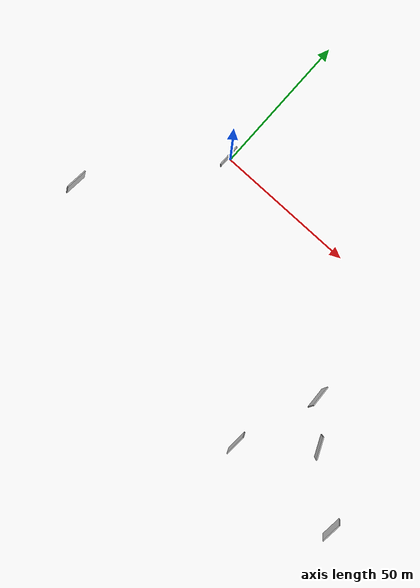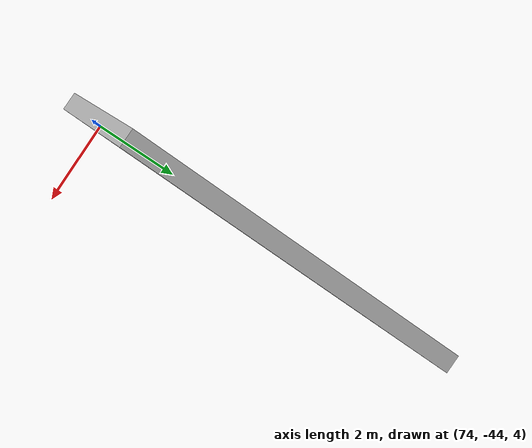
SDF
<sdf version="1.5">
 <world name="default">
  <scene><shadows>0</shadows></scene>
  <plugin name="ros_interface_plugin" filename="librotors_gazebo_ros_interface_plugin.so"/>
  <physics name="default_physics" default="0" type="ode">
   <gravity>0 0 -9.8066</gravity>
   <ode>
    <solver>
     <type>quick</type>
     <iters>35</iters>
     <sor>1.3</sor>
     <use_dynamic_moi_rescaling>0</use_dynamic_moi_rescaling>
    </solver>
    <constraints>
     <cfm>0</cfm>
     <erp>0.2</erp>
     <contact_max_correcting_vel>100</contact_max_correcting_vel>
     <contact_surface_layer>0.001</contact_surface_layer>
    </constraints>
   </ode>
   <max_step_size>0.004</max_step_size>
   <real_time_factor>1</real_time_factor>
   <real_time_update_rate>250</real_time_update_rate>
   <magnetic_field>6.0e-6 2.3e-5 -4.2e-5</magnetic_field>
  </physics>
  <include><uri>model://sun_2</uri></include>
  <include>
   <static>true</static>
   <pose>-1.1 0.18 -1 0 0 -1.586</pose>
   <name>w1</name>
   <uri>model://smaze_wall</uri>
  </include>
  <include>
   <static>true</static>
   <pose>-31.463 -41.132 8.711 0 -0.3784 -1.586</pose>
   <name>w2</name>
   <uri>model://smaze_wall</uri>
  </include>
  <include>
   <static>true</static>
   <pose>74.0 -40.724 5.897 0 -0.3784 -1.586</pose>
   <name>w3</name>
   <uri>model://smaze_wall</uri>
  </include>
  <include>
   <static>true</static>
   <pose>64.79 -69.038 1.147 0 0.2157 -1.586</pose>
   <name>w4</name>
   <uri>model://smaze_wall</uri>
  </include>
  <include>
   <static>true</static>
   <pose>108.515 -69.67 -0.8383 0 0.2157 -1.586</pose>
   <name>w5</name>
   <uri>model://smaze_wall</uri>
  </include>
  <include>
   <static>true</static>
   <pose>86.213 -52.06 1.763 0 0.0 -1.1254</pose>
   <name>w6</name>
   <uri>model://smaze_wall</uri>
  </include>
 </world>
</sdf>

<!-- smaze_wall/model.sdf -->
<sdf version="1.5">
  <model name="smaze_wall">
    <static>true</static>
    <link name="link">
      <pose>0 0 2.5 0 0 0</pose>
      <collision name="collision">
        <geometry>
          <box>
            <size>8 0.4 5</size>
          </box>
        </geometry>
      </collision>
      <visual name="visual">
        <geometry>
          <box>
            <size>8 0.4 5</size>
          </box>
        </geometry>
        <material>
          <script>
            <uri>model://smaze_wall/materials/scripts</uri>
            <uri>model://smaze_wall/materials/textures</uri>
            <name>vrc/smaze_wall</name>
          </script>
        </material>
      </visual>
    </link>
  </model>
</sdf>
